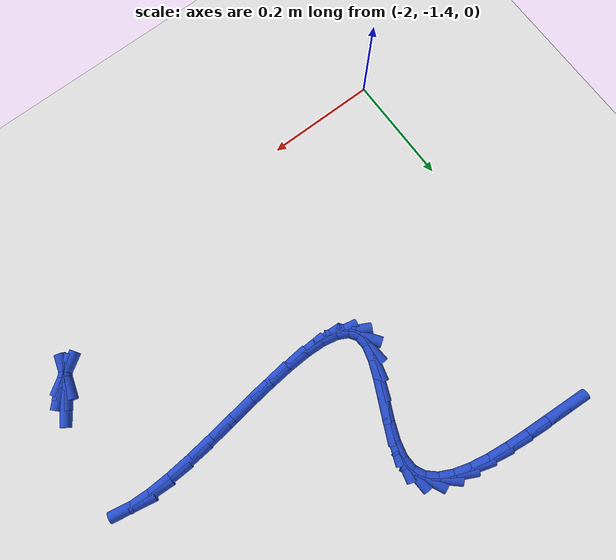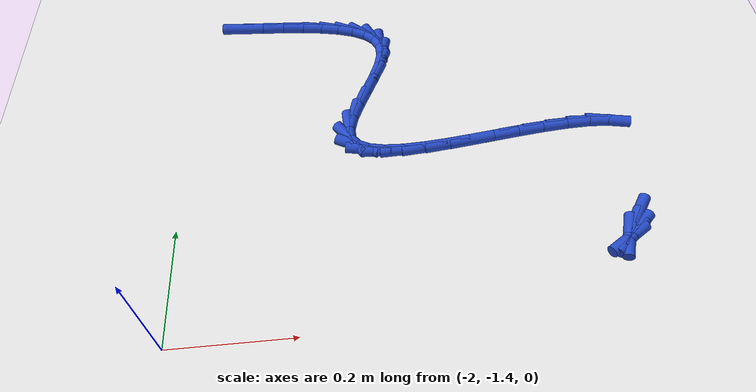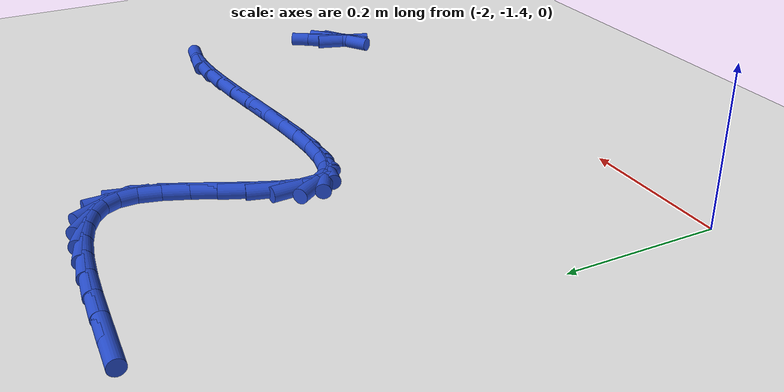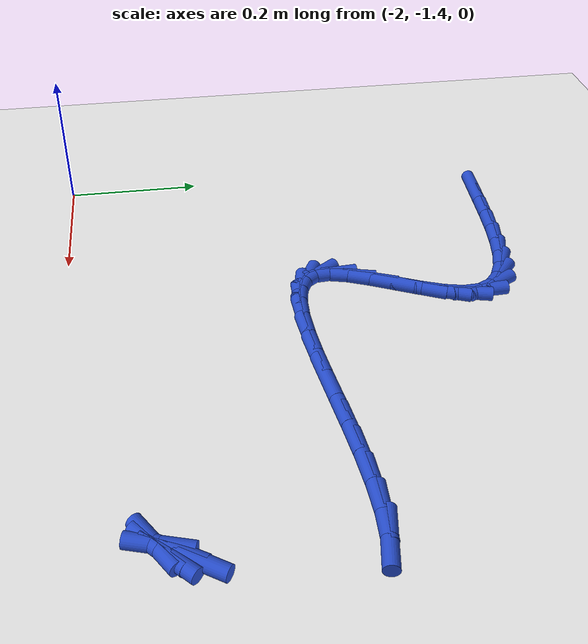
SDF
<sdf version="1.6">
 <world name="default">
  <model name="ground_plane">
   <static>1</static>
   <link name="link">
    <collision name="collision">
     <geometry><plane><normal>0 0 1</normal><size>100 100</size></plane></geometry>
     <surface><friction><ode><mu>100</mu><mu2>50</mu2></ode></friction></surface>
    </collision>
    <visual name="visual">
     <cast_shadows>0</cast_shadows>
     <geometry><plane><normal>0 0 1</normal><size>100 100</size></plane></geometry>
     <material>
      <script><uri>file://media/materials/scripts/gazebo.material</uri><name>Gazebo/WhiteGlow</name></script>
     </material>
    </visual>
   </link>
  </model>
  <model name="line">
   <link name="link_179">
    <pose>-1.911437454601041 -0.7425294781708621 0.01 0 1.57 -0.06250956770411577</pose>
    <collision name="collision">
     <geometry><cylinder><radius>0.01</radius><length>0.08</length></cylinder></geometry>
    </collision>
    <visual name="visual">
     <material>
      <script><name>Gazebo/Blue</name><uri>file://media/materials/scripts/gazebo.material</uri></script>
     </material>
     <geometry><cylinder><radius>0.01</radius><length>0.08</length></cylinder></geometry>
    </visual>
   </link>
   <link name="link_180">
    <pose>-1.8713640528281799 -0.7450377169794044 0.01 0 1.57 -0.06679488029830172</pose>
    <collision name="collision">
     <geometry><cylinder><radius>0.01</radius><length>0.08</length></cylinder></geometry>
    </collision>
    <visual name="visual">
     <material>
      <script><name>Gazebo/Blue</name><uri>file://media/materials/scripts/gazebo.material</uri></script>
     </material>
     <geometry><cylinder><radius>0.01</radius><length>0.08</length></cylinder></geometry>
    </visual>
   </link>
   <link name="link_181">
    <pose>-1.8314405290223197 -0.7477083769212821 0.01 0 1.57 -0.08740787517870607</pose>
    <collision name="collision">
     <geometry><cylinder><radius>0.01</radius><length>0.08</length></cylinder></geometry>
    </collision>
    <visual name="visual">
     <material>
      <script><name>Gazebo/Blue</name><uri>file://media/materials/scripts/gazebo.material</uri></script>
     </material>
     <geometry><cylinder><radius>0.01</radius><length>0.08</length></cylinder></geometry>
    </visual>
   </link>
   <link name="link_182">
    <pose>-1.7927133261893942 -0.7511020866398669 0.01 0 1.57 -0.12750675318283183</pose>
    <collision name="collision">
     <geometry><cylinder><radius>0.01</radius><length>0.08</length></cylinder></geometry>
    </collision>
    <visual name="visual">
     <material>
      <script><name>Gazebo/Blue</name><uri>file://media/materials/scripts/gazebo.material</uri></script>
     </material>
     <geometry><cylinder><radius>0.01</radius><length>0.08</length></cylinder></geometry>
    </visual>
   </link>
   <link name="link_183">
    <pose>-1.7562288873353382 -0.7557794747785298 0.01 0 1.57 -0.19399404742382392</pose>
    <collision name="collision">
     <geometry><cylinder><radius>0.01</radius><length>0.08</length></cylinder></geometry>
    </collision>
    <visual name="visual">
     <material>
      <script><name>Gazebo/Blue</name><uri>file://media/materials/scripts/gazebo.material</uri></script>
     </material>
     <geometry><cylinder><radius>0.01</radius><length>0.08</length></cylinder></geometry>
    </visual>
   </link>
   <link name="link_184">
    <pose>-1.7230336554660848 -0.7623011699806417 0.01 0 1.57 -0.29997837144417</pose>
    <collision name="collision">
     <geometry><cylinder><radius>0.01</radius><length>0.08</length></cylinder></geometry>
    </collision>
    <visual name="visual">
     <material>
      <script><name>Gazebo/Blue</name><uri>file://media/materials/scripts/gazebo.material</uri></script>
     </material>
     <geometry><cylinder><radius>0.01</radius><length>0.08</length></cylinder></geometry>
    </visual>
   </link>
   <link name="link_185">
    <pose>-1.6941740735875677 -0.7712278008895745 0.01 0 1.57 -0.4688627933205746</pose>
    <collision name="collision">
     <geometry><cylinder><radius>0.01</radius><length>0.08</length></cylinder></geometry>
    </collision>
    <visual name="visual">
     <material>
      <script><name>Gazebo/Blue</name><uri>file://media/materials/scripts/gazebo.material</uri></script>
     </material>
     <geometry><cylinder><radius>0.01</radius><length>0.08</length></cylinder></geometry>
    </visual>
   </link>
   <link name="link_186">
    <pose>-1.6706965847057202 -0.7831199961486991 0.01 0 1.57 -0.7352186364969852</pose>
    <collision name="collision">
     <geometry><cylinder><radius>0.01</radius><length>0.08</length></cylinder></geometry>
    </collision>
    <visual name="visual">
     <material>
      <script><name>Gazebo/Blue</name><uri>file://media/materials/scripts/gazebo.material</uri></script>
     </material>
     <geometry><cylinder><radius>0.01</radius><length>0.08</length></cylinder></geometry>
    </visual>
   </link>
   <link name="link_187">
    <pose>-1.6536476318264772 -0.7985383844013865 0.01 0 1.57 -1.1145020195885484</pose>
    <collision name="collision">
     <geometry><cylinder><radius>0.01</radius><length>0.08</length></cylinder></geometry>
    </collision>
    <visual name="visual">
     <material>
      <script><name>Gazebo/Blue</name><uri>file://media/materials/scripts/gazebo.material</uri></script>
     </material>
     <geometry><cylinder><radius>0.01</radius><length>0.08</length></cylinder></geometry>
    </visual>
   </link>
   <link name="link_188">
    <pose>-1.6440736579557722 -0.818043594291008 0.01 0 1.57 -1.526100756274613</pose>
    <collision name="collision">
     <geometry><cylinder><radius>0.01</radius><length>0.08</length></cylinder></geometry>
    </collision>
    <visual name="visual">
     <material>
      <script><name>Gazebo/Blue</name><uri>file://media/materials/scripts/gazebo.material</uri></script>
     </material>
     <geometry><cylinder><radius>0.01</radius><length>0.08</length></cylinder></geometry>
    </visual>
   </link>
   <link name="link_189">
    <pose>-1.6429941156088117 -0.842180737492169 0.01 0 1.57 1.3302607800246653</pose>
    <collision name="collision">
     <geometry><cylinder><radius>0.01</radius><length>0.08</length></cylinder></geometry>
    </collision>
    <visual name="visual">
     <material>
      <script><name>Gazebo/Blue</name><uri>file://media/materials/scripts/gazebo.material</uri></script>
     </material>
     <geometry><cylinder><radius>0.01</radius><length>0.08</length></cylinder></geometry>
    </visual>
   </link>
   <link name="link_190">
    <pose>-1.6499802025711767 -0.8706623167568726 0.01 0 1.57 1.191647351589806</pose>
    <collision name="collision">
     <geometry><cylinder><radius>0.01</radius><length>0.08</length></cylinder></geometry>
    </collision>
    <visual name="visual">
     <material>
      <script><name>Gazebo/Blue</name><uri>file://media/materials/scripts/gazebo.material</uri></script>
     </material>
     <geometry><cylinder><radius>0.01</radius><length>0.08</length></cylinder></geometry>
    </visual>
   </link>
   <link name="link_191">
    <pose>-1.6624515771215869 -0.9019639039615667 0.01 0 1.57 1.1332457793438324</pose>
    <collision name="collision">
     <geometry><cylinder><radius>0.01</radius><length>0.08</length></cylinder></geometry>
    </collision>
    <visual name="visual">
     <material>
      <script><name>Gazebo/Blue</name><uri>file://media/materials/scripts/gazebo.material</uri></script>
     </material>
     <geometry><cylinder><radius>0.01</radius><length>0.08</length></cylinder></geometry>
    </visual>
   </link>
   <link name="link_192">
    <pose>-1.6776533048993771 -0.9344606967968607 0.01 0 1.57 1.128742506595247</pose>
    <collision name="collision">
     <geometry><cylinder><radius>0.01</radius><length>0.08</length></cylinder></geometry>
    </collision>
    <visual name="visual">
     <material>
      <script><name>Gazebo/Blue</name><uri>file://media/materials/scripts/gazebo.material</uri></script>
     </material>
     <geometry><cylinder><radius>0.01</radius><length>0.08</length></cylinder></geometry>
    </visual>
   </link>
   <link name="link_193">
    <pose>-1.6928304515438835 -0.966527892953365 0.01 0 1.57 1.1790667571156912</pose>
    <collision name="collision">
     <geometry><cylinder><radius>0.01</radius><length>0.08</length></cylinder></geometry>
    </collision>
    <visual name="visual">
     <material>
      <script><name>Gazebo/Blue</name><uri>file://media/materials/scripts/gazebo.material</uri></script>
     </material>
     <geometry><cylinder><radius>0.01</radius><length>0.08</length></cylinder></geometry>
    </visual>
   </link>
   <link name="link_194">
    <pose>-1.7052280826944406 -0.9965406901216897 0.01 0 1.57 1.3158433634043172</pose>
    <collision name="collision">
     <geometry><cylinder><radius>0.01</radius><length>0.08</length></cylinder></geometry>
    </collision>
    <visual name="visual">
     <material>
      <script><name>Gazebo/Blue</name><uri>file://media/materials/scripts/gazebo.material</uri></script>
     </material>
     <geometry><cylinder><radius>0.01</radius><length>0.08</length></cylinder></geometry>
    </visual>
   </link>
   <link name="link_195">
    <pose>-1.7120912639903854 -1.022874285992445 0.01 0 1.57 -1.5048004117621185</pose>
    <collision name="collision">
     <geometry><cylinder><radius>0.01</radius><length>0.08</length></cylinder></geometry>
    </collision>
    <visual name="visual">
     <material>
      <script><name>Gazebo/Blue</name><uri>file://media/materials/scripts/gazebo.material</uri></script>
     </material>
     <geometry><cylinder><radius>0.01</radius><length>0.08</length></cylinder></geometry>
    </visual>
   </link>
   <link name="link_196">
    <pose>-1.7106999801626246 -1.0439250335465087 0.01 0 1.57 -0.9504217010902407</pose>
    <collision name="collision">
     <geometry><cylinder><radius>0.01</radius><length>0.08</length></cylinder></geometry>
    </collision>
    <visual name="visual">
     <material>
      <script><name>Gazebo/Blue</name><uri>file://media/materials/scripts/gazebo.material</uri></script>
     </material>
     <geometry><cylinder><radius>0.01</radius><length>0.08</length></cylinder></geometry>
    </visual>
   </link>
   <link name="link_197">
    <pose>-1.699901550646375 -1.0590388356849776 0.01 0 1.57 -0.47357823098189095</pose>
    <collision name="collision">
     <geometry><cylinder><radius>0.01</radius><length>0.08</length></cylinder></geometry>
    </collision>
    <visual name="visual">
     <material>
      <script><name>Gazebo/Blue</name><uri>file://media/materials/scripts/gazebo.material</uri></script>
     </material>
     <geometry><cylinder><radius>0.01</radius><length>0.08</length></cylinder></geometry>
    </visual>
   </link>
   <link name="link_198">
    <pose>-1.6807097957000452 -1.0688741424491108 0.01 0 1.57 -0.19844737257703493</pose>
    <collision name="collision">
     <geometry><cylinder><radius>0.01</radius><length>0.08</length></cylinder></geometry>
    </collision>
    <visual name="visual">
     <material>
      <script><name>Gazebo/Blue</name><uri>file://media/materials/scripts/gazebo.material</uri></script>
     </material>
     <geometry><cylinder><radius>0.01</radius><length>0.08</length></cylinder></geometry>
    </visual>
   </link>
   <link name="link_199">
    <pose>-1.6542972388075963 -1.0741855522234336 0.01 0 1.57 -0.04747113225260116</pose>
    <collision name="collision">
     <geometry><cylinder><radius>0.01</radius><length>0.08</length></cylinder></geometry>
    </collision>
    <visual name="visual">
     <material>
      <script><name>Gazebo/Blue</name><uri>file://media/materials/scripts/gazebo.material</uri></script>
     </material>
     <geometry><cylinder><radius>0.01</radius><length>0.08</length></cylinder></geometry>
    </visual>
   </link>
   <link name="link_200">
    <pose>-1.6218364034529917 -1.0757276633924713 0.01 0 1.57 0.03942047656773935</pose>
    <collision name="collision">
     <geometry><cylinder><radius>0.01</radius><length>0.08</length></cylinder></geometry>
    </collision>
    <visual name="visual">
     <material>
      <script><name>Gazebo/Blue</name><uri>file://media/materials/scripts/gazebo.material</uri></script>
     </material>
     <geometry><cylinder><radius>0.01</radius><length>0.08</length></cylinder></geometry>
    </visual>
   </link>
   <link name="link_201">
    <pose>-1.5844998131201955 -1.0742550743407497 0.01 0 1.57 0.09070333889726809</pose>
    <collision name="collision">
     <geometry><cylinder><radius>0.01</radius><length>0.08</length></cylinder></geometry>
    </collision>
    <visual name="visual">
     <material>
      <script><name>Gazebo/Blue</name><uri>file://media/materials/scripts/gazebo.material</uri></script>
     </material>
     <geometry><cylinder><radius>0.01</radius><length>0.08</length></cylinder></geometry>
    </visual>
   </link>
   <link name="link_202">
    <pose>-1.543459991293168 -1.0705223834527944 0.01 0 1.57 0.11964908335490078</pose>
    <collision name="collision">
     <geometry><cylinder><radius>0.01</radius><length>0.08</length></cylinder></geometry>
    </collision>
    <visual name="visual">
     <material>
      <script><name>Gazebo/Blue</name><uri>file://media/materials/scripts/gazebo.material</uri></script>
     </material>
     <geometry><cylinder><radius>0.01</radius><length>0.08</length></cylinder></geometry>
    </visual>
   </link>
   <link name="link_203">
    <pose>-1.4998894614558722 -1.0652841891131304 0.01 0 1.57 0.13252100692507646</pose>
    <collision name="collision">
     <geometry><cylinder><radius>0.01</radius><length>0.08</length></cylinder></geometry>
    </collision>
    <visual name="visual">
     <material>
      <script><name>Gazebo/Blue</name><uri>file://media/materials/scripts/gazebo.material</uri></script>
     </material>
     <geometry><cylinder><radius>0.01</radius><length>0.08</length></cylinder></geometry>
    </visual>
   </link>
   <link name="link_204">
    <pose>-1.4549607470922714 -1.0592950897062834 0.01 0 1.57 0.13190151310340484</pose>
    <collision name="collision">
     <geometry><cylinder><radius>0.01</radius><length>0.08</length></cylinder></geometry>
    </collision>
    <visual name="visual">
     <material>
      <script><name>Gazebo/Blue</name><uri>file://media/materials/scripts/gazebo.material</uri></script>
     </material>
     <geometry><cylinder><radius>0.01</radius><length>0.08</length></cylinder></geometry>
    </visual>
   </link>
   <link name="link_205">
    <pose>-1.409846371686328 -1.0533096836167788 0.01 0 1.57 0.11790535388593215</pose>
    <collision name="collision">
     <geometry><cylinder><radius>0.01</radius><length>0.08</length></cylinder></geometry>
    </collision>
    <visual name="visual">
     <material>
      <script><name>Gazebo/Blue</name><uri>file://media/materials/scripts/gazebo.material</uri></script>
     </material>
     <geometry><cylinder><radius>0.01</radius><length>0.08</length></cylinder></geometry>
    </visual>
   </link>
   <link name="link_206">
    <pose>-1.3657188587220053 -1.048082569229143 0.01 0 1.57 0.08827109366667563</pose>
    <collision name="collision">
     <geometry><cylinder><radius>0.01</radius><length>0.08</length></cylinder></geometry>
    </collision>
    <visual name="visual">
     <material>
      <script><name>Gazebo/Blue</name><uri>file://media/materials/scripts/gazebo.material</uri></script>
     </material>
     <geometry><cylinder><radius>0.01</radius><length>0.08</length></cylinder></geometry>
    </visual>
   </link>
   <link name="link_207">
    <pose>-1.3237507316832655 -1.0443683449279006 0.01 0 1.57 0.03742758259562537</pose>
    <collision name="collision">
     <geometry><cylinder><radius>0.01</radius><length>0.08</length></cylinder></geometry>
    </collision>
    <visual name="visual">
     <material>
      <script><name>Gazebo/Blue</name><uri>file://media/materials/scripts/gazebo.material</uri></script>
     </material>
     <geometry><cylinder><radius>0.01</radius><length>0.08</length></cylinder></geometry>
    </visual>
   </link>
   <link name="link_208">
    <pose>-1.2851145140540705 -1.0429216090975773 0.01 0 1.57 -0.04612222357294336</pose>
    <collision name="collision">
     <geometry><cylinder><radius>0.01</radius><length>0.08</length></cylinder></geometry>
    </collision>
    <visual name="visual">
     <material>
      <script><name>Gazebo/Blue</name><uri>file://media/materials/scripts/gazebo.material</uri></script>
     </material>
     <geometry><cylinder><radius>0.01</radius><length>0.08</length></cylinder></geometry>
    </visual>
   </link>
   <link name="link_209">
    <pose>-1.2509827293183844 -1.0444969601226992 0.01 0 1.57 -0.1859167515260369</pose>
    <collision name="collision">
     <geometry><cylinder><radius>0.01</radius><length>0.08</length></cylinder></geometry>
    </collision>
    <visual name="visual">
     <material>
      <script><name>Gazebo/Blue</name><uri>file://media/materials/scripts/gazebo.material</uri></script>
     </material>
     <geometry><cylinder><radius>0.01</radius><length>0.08</length></cylinder></geometry>
    </visual>
   </link>
   <link name="link_218">
    <pose>-1.2540010357442355 -1.246988599031514 0.01 0 1.57 0.9889554747164232</pose>
    <collision name="collision">
     <geometry><cylinder><radius>0.01</radius><length>0.08</length></cylinder></geometry>
    </collision>
    <visual name="visual">
     <material>
      <script><name>Gazebo/Blue</name><uri>file://media/materials/scripts/gazebo.material</uri></script>
     </material>
     <geometry><cylinder><radius>0.01</radius><length>0.08</length></cylinder></geometry>
    </visual>
   </link>
   <link name="link_219">
    <pose>-1.2686656679513395 -1.2692819601383716 0.01 0 1.57 1.0156482160591387</pose>
    <collision name="collision">
     <geometry><cylinder><radius>0.01</radius><length>0.08</length></cylinder></geometry>
    </collision>
    <visual name="visual">
     <material>
      <script><name>Gazebo/Blue</name><uri>file://media/materials/scripts/gazebo.material</uri></script>
     </material>
     <geometry><cylinder><radius>0.01</radius><length>0.08</length></cylinder></geometry>
    </visual>
   </link>
   <link name="link_220">
    <pose>-1.2773351129665305 -1.2832601793276655 0.01 0 1.57 1.2711816677802135</pose>
    <collision name="collision">
     <geometry><cylinder><radius>0.01</radius><length>0.08</length></cylinder></geometry>
    </collision>
    <visual name="visual">
     <material>
      <script><name>Gazebo/Blue</name><uri>file://media/materials/scripts/gazebo.material</uri></script>
     </material>
     <geometry><cylinder><radius>0.01</radius><length>0.08</length></cylinder></geometry>
    </visual>
   </link>
   <link name="link_221">
    <pose>-1.2788193811782154 -1.2880649722414326 0.01 0 1.57 0.5751343525855936</pose>
    <collision name="collision">
     <geometry><cylinder><radius>0.01</radius><length>0.08</length></cylinder></geometry>
    </collision>
    <visual name="visual">
     <material>
      <script><name>Gazebo/Blue</name><uri>file://media/materials/scripts/gazebo.material</uri></script>
     </material>
     <geometry><cylinder><radius>0.01</radius><length>0.08</length></cylinder></geometry>
    </visual>
   </link>
   <link name="link_222">
    <pose>-1.2736353277325536 -1.2847044806847014 0.01 0 1.57 0.7471863910237541</pose>
    <collision name="collision">
     <geometry><cylinder><radius>0.01</radius><length>0.08</length></cylinder></geometry>
    </collision>
    <visual name="visual">
     <material>
      <script><name>Gazebo/Blue</name><uri>file://media/materials/scripts/gazebo.material</uri></script>
     </material>
     <geometry><cylinder><radius>0.01</radius><length>0.08</length></cylinder></geometry>
    </visual>
   </link>
   <link name="link_223">
    <pose>-1.2624010506511412 -1.2742975550378866 0.01 0 1.57 0.7753414064983682</pose>
    <collision name="collision">
     <geometry><cylinder><radius>0.01</radius><length>0.08</length></cylinder></geometry>
    </collision>
    <visual name="visual">
     <material>
      <script><name>Gazebo/Blue</name><uri>file://media/materials/scripts/gazebo.material</uri></script>
     </material>
     <geometry><cylinder><radius>0.01</radius><length>0.08</length></cylinder></geometry>
    </visual>
   </link>
  </model>
 </world>
</sdf>
